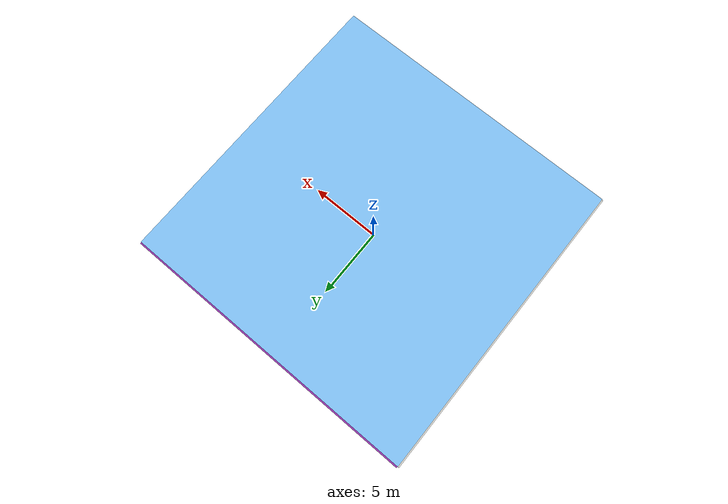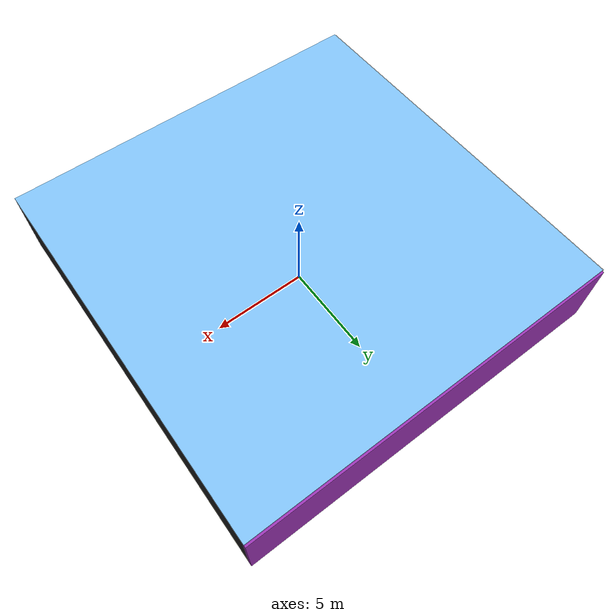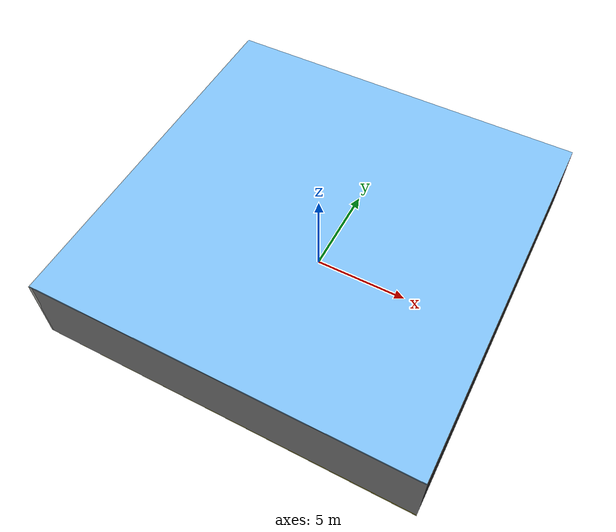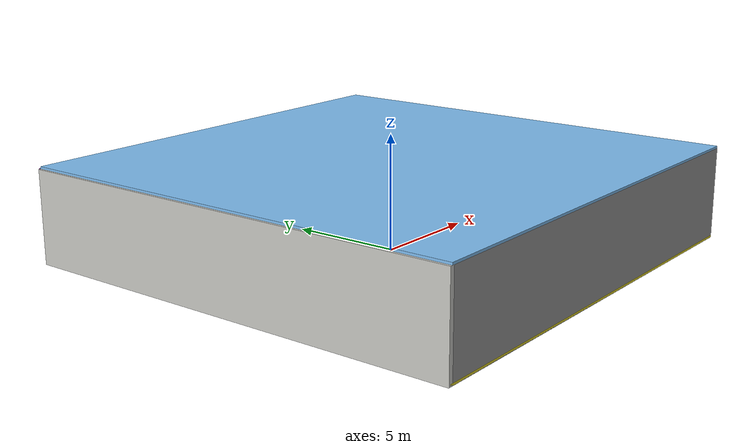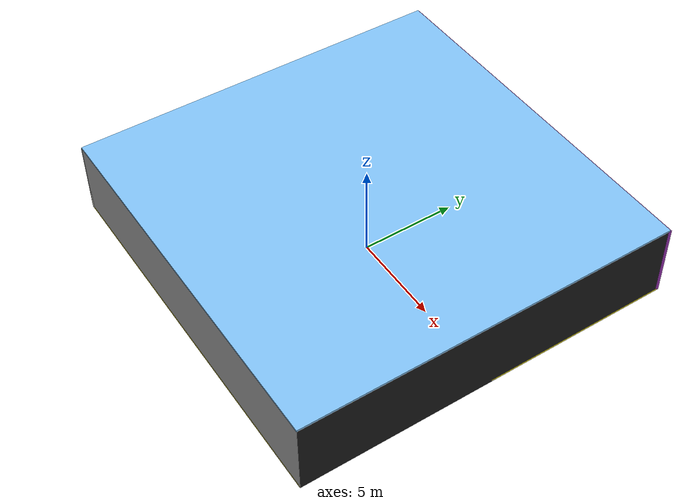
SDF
<sdf version="1.4">
 <world name="default">
  <physics type="ode">
   <max_step_size>0.001</max_step_size>
   <real_time_factor>1</real_time_factor>
   <real_time_update_rate>1000</real_time_update_rate>
   <gravity>0 0 -9.8</gravity>
  </physics>
  <scene><ambient>0.4 0.4 0.4 1</ambient><background>0.7 0.7 0.7 1</background><shadows>1</shadows></scene>
  <model name="Surrounding">
   <static>1</static>
   <link name="Ceiling">
    <collision name="Ceiling_Collision"><geometry><box><size>20 20 0.1</size></box></geometry></collision>
    <visual name="Ceiling_Visual">
     <geometry><box><size>20 20 0.1</size></box></geometry>
     <material>
      <script><uri>file://media/materials/scripts/gazebo.material</uri><name>Gazebo/SkyBlue</name></script>
     </material>
    </visual>
    <pose>0 0 4.05 0 0 0</pose>
   </link>
   <link name="Wall_South">
    <collision name="Wall_South_Collision">
     <geometry><box><size>20 0 4</size></box></geometry>
     <pose>0 0 2 0 -0 0</pose>
    </collision>
    <visual name="Wall_South_Visual">
     <pose>0 0 2 0 -0 0</pose>
     <geometry><box><size>20 0 4</size></box></geometry>
     <material>
      <script><uri>file://media/materials/scripts/gazebo.material</uri><name>Gazebo/GreyGradientSky</name></script>
     </material>
    </visual>
    <velocity_decay><linear>0</linear><angular>0</angular></velocity_decay>
    <pose>0 -10 0 0 -0 0</pose>
   </link>
   <link name="Wall_East">
    <collision name="Wall_21_Collision">
     <geometry><box><size>20 0 4</size></box></geometry>
     <pose>0 0 2 0 -0 0</pose>
    </collision>
    <visual name="Wall_21_Visual">
     <pose>0 0 2 0 -0 0</pose>
     <geometry><box><size>20 0 4</size></box></geometry>
     <material>
      <script><uri>file://media/materials/scripts/gazebo.material</uri><name>Gazebo/FlatBlack</name></script>
     </material>
    </visual>
    <velocity_decay><linear>0</linear><angular>0</angular></velocity_decay>
    <pose>10 0 0 0 -0 1.5708</pose>
   </link>
   <link name="Wall_North">
    <collision name="Wall_22_Collision">
     <geometry><box><size>20 0.2 4</size></box></geometry>
     <pose>0 0 2 0 -0 0</pose>
    </collision>
    <visual name="Wall_22_Visual">
     <pose>0 0 2 0 -0 0</pose>
     <geometry><box><size>20 0.2 4</size></box></geometry>
     <material>
      <script><uri>file://media/materials/scripts/gazebo.material</uri><name>Gazebo/Purple</name></script>
     </material>
    </visual>
    <velocity_decay><linear>0</linear><angular>0</angular></velocity_decay>
    <pose>0 10 0 0 -0 0</pose>
   </link>
   <link name="Wall_West">
    <collision name="Wall_23_Collision">
     <geometry><box><size>20 0.2 4</size></box></geometry>
     <pose>0 0 2 0 -0 0</pose>
    </collision>
    <visual name="Wall_23_Visual">
     <pose>0 0 2 0 -0 0</pose>
     <geometry><box><size>20 0.2 4</size></box></geometry>
     <material>
      <script><uri>file://media/materials/scripts/gazebo.material</uri><name>Gazebo/CeilingTiled</name></script>
     </material>
    </visual>
    <velocity_decay><linear>0</linear><angular>0</angular></velocity_decay>
    <pose>-10 0 0 0 0 -1.5708</pose>
   </link>
   <link name="Ground_link">
    <collision name="collision">
     <pose>0 0 .05 0 -0 0</pose>
     <geometry><box><size>20 20 0.1</size></box></geometry>
    </collision>
    <visual name="visual">
     <pose>0 0 .05 0 -0 0</pose>
     <geometry><box><size>20 20 0.1</size></box></geometry>
     <material>
      <script><uri>file://media/materials/scripts/gazebo.material</uri><name>Gazebo/Yellow</name></script>
     </material>
    </visual>
   </link>
   <static>1</static>
  </model>
  <spherical_coordinates>
   <surface_model>EARTH_WGS84</surface_model>
   <latitude_deg>0</latitude_deg>
   <longitude_deg>0</longitude_deg>
   <elevation>0</elevation>
   <heading_deg>0</heading_deg>
  </spherical_coordinates>
  <light name="lightball_0" type="diffuse">
   <diffuse>0.8 0.8 0.8 1</diffuse>
   <specular>0.2 0.2 0.2 1</specular>
   <attenuation>
    <range>100</range>
    <constant>0.7</constant>
    <linear>0.01</linear>
    <quadratic>0.001</quadratic>
   </attenuation>
   <direction>-0.5 0.1 -0.9</direction>
   <pose>2.08333592579 -8.33993969188 3.07736773441 0 0 0</pose>
  </light>
  <light name="lightball_1" type="diffuse">
   <diffuse>0.8 0.8 0.8 1</diffuse>
   <specular>0.2 0.2 0.2 1</specular>
   <attenuation>
    <range>100</range>
    <constant>0.7</constant>
    <linear>0.01</linear>
    <quadratic>0.001</quadratic>
   </attenuation>
   <direction>-0.5 0.1 -0.9</direction>
   <pose>-2.45424622305 7.70987411004 2.24824781214 0 0 0</pose>
  </light>
  <light name="lightball_2" type="diffuse">
   <diffuse>0.8 0.8 0.8 1</diffuse>
   <specular>0.2 0.2 0.2 1</specular>
   <attenuation>
    <range>100</range>
    <constant>0.7</constant>
    <linear>0.01</linear>
    <quadratic>0.001</quadratic>
   </attenuation>
   <direction>-0.5 0.1 -0.9</direction>
   <pose>9.97151118487 8.74313154931 3.36377018523 0 0 0</pose>
  </light>
  <light name="lightball_3" type="diffuse">
   <diffuse>0.8 0.8 0.8 1</diffuse>
   <specular>0.2 0.2 0.2 1</specular>
   <attenuation>
    <range>100</range>
    <constant>0.7</constant>
    <linear>0.01</linear>
    <quadratic>0.001</quadratic>
   </attenuation>
   <direction>-0.5 0.1 -0.9</direction>
   <pose>9.14845286361 -8.78703155832 3.77370992589 0 0 0</pose>
  </light>
  <light name="lightball_4" type="diffuse">
   <diffuse>0.8 0.8 0.8 1</diffuse>
   <specular>0.2 0.2 0.2 1</specular>
   <attenuation>
    <range>100</range>
    <constant>0.7</constant>
    <linear>0.01</linear>
    <quadratic>0.001</quadratic>
   </attenuation>
   <direction>-0.5 0.1 -0.9</direction>
   <pose>7.00997676924 9.20246112106 0.706478151204 0 0 0</pose>
  </light>
  <light name="lightball_5" type="diffuse">
   <diffuse>0.8 0.8 0.8 1</diffuse>
   <specular>0.2 0.2 0.2 1</specular>
   <attenuation>
    <range>100</range>
    <constant>0.7</constant>
    <linear>0.01</linear>
    <quadratic>0.001</quadratic>
   </attenuation>
   <direction>-0.5 0.1 -0.9</direction>
   <pose>5.24279874529 2.43963523181 3.61194315695 0 0 0</pose>
  </light>
  <light name="lightball_6" type="diffuse">
   <diffuse>0.8 0.8 0.8 1</diffuse>
   <specular>0.2 0.2 0.2 1</specular>
   <attenuation>
    <range>100</range>
    <constant>0.7</constant>
    <linear>0.01</linear>
    <quadratic>0.001</quadratic>
   </attenuation>
   <direction>-0.5 0.1 -0.9</direction>
   <pose>5.09420474981 4.31357085689 1.33442632959 0 0 0</pose>
  </light>
  <light name="lightball_7" type="diffuse">
   <diffuse>0.8 0.8 0.8 1</diffuse>
   <specular>0.2 0.2 0.2 1</specular>
   <attenuation>
    <range>100</range>
    <constant>0.7</constant>
    <linear>0.01</linear>
    <quadratic>0.001</quadratic>
   </attenuation>
   <direction>-0.5 0.1 -0.9</direction>
   <pose>7.17823657918 -3.39206821583 1.03912473701 0 0 0</pose>
  </light>
  <include><uri>model://cabinet</uri><pose>-7.99114896288 2.23217287539 0 0 0 2.22596665381</pose></include>
  <include><uri>model://cabinet</uri><pose>-8.14247618275 7.72316463579 0 0 0 1.25172471453</pose></include>
  <include><uri>model://table</uri><pose>-2.43566506068 -3.87984141499 0 0 0 2.23461557483</pose></include>
  <include><uri>model://cabinet</uri><pose>0.430567702255 8.0641641358 0 0 0 0.44554441463</pose></include>
  <include>
   <uri>model://robocup_3Dsim_goal</uri>
   <pose>4.89969141042 8.66482905675 0 0 0 2.81843900227</pose>
  </include>
 </world>
</sdf>

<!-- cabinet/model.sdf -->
<sdf version="1.5">
  <model name="cabinet">
    <static>true</static>
    <link name="cabinet_bottom_plate">
      <inertial>
        <pose>0 0 -1 0 0 0</pose>
        <inertia>
          <ixx>2.050000</ixx>
          <ixy>0</ixy>
          <ixz>0</ixz>
          <iyy>2.050000</iyy>
          <iyz>0</iyz>
          <izz>2.050000</izz>
        </inertia>
        <mass>25.000000</mass>
      </inertial>
      <collision name="cabinet_bottom_plate_geom">
        <pose>0 0 0.010000 0 0 0</pose>
        <geometry>
          <box>
            <size>0.450000 0.450000 0.020000</size>
          </box>
        </geometry>
      </collision>
      <visual name="cabinet_bottom_plate_geom_visual">
        <pose>0 0 0.010000 0 0 0</pose>
        <geometry>
          <box>
            <size>0.450000 0.450000 0.020000</size>
          </box>
        </geometry>
        <material>
          <script>
            <uri>model://media/materials/scripts/gazebo.material</uri>
            <name>Gazebo/Wood</name>
          </script>
        </material>
      </visual>
      <collision name="cabinet_bottom_plate_geom_cabinet_back_plate">
        <pose>0.235000 0 0.510000 0 0 0</pose>
        <geometry>
          <box>
            <size>0.020000 0.450000 1.020000</size>
          </box>
        </geometry>
      </collision>
      <visual name="cabinet_bottom_plate_geom_cabinet_back_plate_visual">
        <pose>0.235000 0 0.510000 0 0 0</pose>
        <geometry>
          <box>
            <size>0.020000 0.450000 1.020000</size>
          </box>
        </geometry>
        <material>
          <script>
            <uri>model://media/materials/scripts/gazebo.material</uri>
            <name>Gazebo/Wood</name>
          </script>
        </material>
      </visual>
      <collision name="cabinet_bottom_plate_geom_cabinet_left_plate">
        <pose>0 0.235000 0.510000 0 0 0</pose>
        <geometry>
          <box>
            <size>0.450000 0.020000 1.020000</size>
          </box>
        </geometry>
      </collision>
      <visual name="cabinet_bottom_plate_geom_cabinet_left_plate_visual">
        <pose>0 0.235000 0.510000 0 0 0</pose>
        <geometry>
          <box>
            <size>0.450000 0.020000 1.020000</size>
          </box>
        </geometry>
        <material>
          <script>
            <uri>model://media/materials/scripts/gazebo.material</uri>
            <name>Gazebo/Wood</name>
          </script>
        </material>
      </visual>
      <collision name="cabinet_bottom_plate_geom_cabinet_middle_plate">
        <pose>0 0 0.510000 0 0 0</pose>
        <geometry>
          <box>
            <size>0.450000 0.450000 0.020000</size>
          </box>
        </geometry>
      </collision>
      <visual name="cabinet_bottom_plate_geom_cabinet_middle_plate_visual">
        <pose>0 0 0.510000 0 0 0</pose>
        <geometry>
          <box>
            <size>0.450000 0.450000 0.020000</size>
          </box>
        </geometry>
        <material>
          <script>
            <uri>model://media/materials/scripts/gazebo.material</uri>
            <name>Gazebo/Wood</name>
          </script>
        </material>
      </visual>
      <collision name="cabinet_bottom_plate_geom_cabinet_right_plate">
        <pose>0 -0.235000 0.510000 0 0 0</pose>
        <geometry>
          <box>
            <size>0.450000 0.020000 1.020000</size>
          </box>
        </geometry>
      </collision>
      <visual name="cabinet_bottom_plate_geom_cabinet_right_plate_visual">
        <pose>0 -0.235000 0.510000 0 0 0</pose>
        <geometry>
          <box>
            <size>0.450000 0.020000 1.020000</size>
          </box>
        </geometry>
        <material>
          <script>
            <uri>model://media/materials/scripts/gazebo.material</uri>
            <name>Gazebo/Wood</name>
          </script>
        </material>
      </visual>
      <collision name="cabinet_bottom_plate_geom_cabinet_top_plate">
        <pose>0 0 1.010000 0 0 0</pose>
        <geometry>
          <box>
            <size>0.450000 0.450000 0.020000</size>
          </box>
        </geometry>
      </collision>
      <visual name="cabinet_bottom_plate_geom_cabinet_top_plate_visual">
        <pose>0 0 1.010000 0 0 0</pose>
        <geometry>
          <box>
            <size>0.450000 0.450000 0.020000</size>
          </box>
        </geometry>
        <material>
          <script>
            <uri>model://media/materials/scripts/gazebo.material</uri>
            <name>Gazebo/Wood</name>
          </script>
        </material>
      </visual>
    </link>
  </model>
</sdf>

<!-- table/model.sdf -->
<sdf version="1.5">
  <model name="table">
    <static>true</static>
    <link name="link">
      <collision name="surface">
        <pose>0 0 1.0 0 0 0</pose>
        <geometry>
          <box>
            <size>1.5 0.8 0.03</size>
          </box>
        </geometry>
        <surface>
          <friction>
            <ode>
              <mu>0.6</mu>
              <mu2>0.6</mu2>
            </ode>
          </friction>
        </surface>
      </collision>
      <visual name="visual1">
        <pose>0 0 1.0 0 0 0</pose>
        <geometry>
          <box>
            <size>1.5 0.8 0.03</size>
          </box>
        </geometry>
        <material>
          <script>
            <uri>model://media/materials/scripts/gazebo.material</uri>
            <name>Gazebo/Wood</name>
          </script>
        </material>
      </visual>
      <collision name="front_left_leg">
        <pose>0.68 0.38 0.5 0 0 0</pose>
        <geometry>
          <cylinder>
            <radius>0.02</radius>
            <length>1.0</length>
          </cylinder>
        </geometry>
      </collision>
      <visual name="front_left_leg">
        <pose>0.68 0.38 0.5 0 0 0</pose>
        <geometry>
          <cylinder>
            <radius>0.02</radius>
            <length>1.0</length>
          </cylinder>
        </geometry>
        <material>
          <script>
            <uri>model://media/materials/scripts/gazebo.material</uri>
            <name>Gazebo/Grey</name>
          </script>
        </material>
      </visual>
      <collision name="front_right_leg">
        <pose>0.68 -0.38 0.5 0 0 0</pose>
        <geometry>
          <cylinder>
            <radius>0.02</radius>
            <length>1.0</length>
          </cylinder>
        </geometry>
      </collision>
      <visual name="front_right_leg">
        <pose>0.68 -0.38 0.5 0 0 0</pose>
        <geometry>
          <cylinder>
            <radius>0.02</radius>
            <length>1.0</length>
          </cylinder>
        </geometry>
        <material>
          <script>
            <uri>model://media/materials/scripts/gazebo.material</uri>
            <name>Gazebo/Grey</name>
          </script>
        </material>
      </visual>
      <collision name="back_right_leg">
        <pose>-0.68 -0.38 0.5 0 0 0</pose>
        <geometry>
          <cylinder>
            <radius>0.02</radius>
            <length>1.0</length>
          </cylinder>
        </geometry>
      </collision>
      <visual name="back_right_leg">
        <pose>-0.68 -0.38 0.5 0 0 0</pose>
        <geometry>
          <cylinder>
            <radius>0.02</radius>
            <length>1.0</length>
          </cylinder>
        </geometry>
        <material>
          <script>
            <uri>model://media/materials/scripts/gazebo.material</uri>
            <name>Gazebo/Grey</name>
          </script>
        </material>
      </visual>
      <collision name="back_left_leg">
        <pose>-0.68 0.38 0.5 0 0 0</pose>
        <geometry>
          <cylinder>
            <radius>0.02</radius>
            <length>1.0</length>
          </cylinder>
        </geometry>
      </collision>
      <visual name="back_left_leg">
        <pose>-0.68 0.38 0.5 0 0 0</pose>
        <geometry>
          <cylinder>
            <radius>0.02</radius>
            <length>1.0</length>
          </cylinder>
        </geometry>
        <material>
          <script>
            <uri>model://media/materials/scripts/gazebo.material</uri>
            <name>Gazebo/Grey</name>
          </script>
        </material>
      </visual>
    </link>
  </model>
</sdf>

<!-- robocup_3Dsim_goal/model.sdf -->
<sdf version="1.5">
  <model name="robocup_3d_goal">
    <static>true</static>
    <link name="left_post">
      <pose>0 1.05 0.45 0 0 0</pose>
      <collision name="collision">
        <geometry>
          <cylinder>
            <radius>0.05</radius>
            <length>0.9</length>
          </cylinder>
        </geometry>
      </collision>
      <visual name="visual">
        <geometry>
          <cylinder>
            <radius>0.05</radius>
            <length>0.9</length>
          </cylinder>
        </geometry>
        <material>
          <script>
            <uri>file://media/materials/scripts/gazebo.material</uri>
            <name>Gazebo/ZincYellow</name>
          </script>
        </material>
      </visual>
    </link>
    <link name="left_support_horiz_lower">
      <pose>0.30 1.05 0.01 0 0 0</pose>
      <collision name="collision">
        <geometry>
          <box>
            <size>0.50 0.02 0.02</size>
          </box>
        </geometry>
      </collision>
      <visual name="visual">
        <geometry>
          <box>
            <size>0.50 0.02 0.02</size>
          </box>
        </geometry>
        <material>
          <script>
            <uri>file://media/materials/scripts/gazebo.material</uri>
            <name>Gazebo/White</name>
          </script>
        </material>
      </visual>
    </link>
    <link name="left_support_horiz_upper">
      <pose>0.30 1.05 0.79 0 0 0</pose>
      <collision name="collision">
        <geometry>
          <box>
            <size>0.50 0.02 0.02</size>
          </box>
        </geometry>
      </collision>
      <visual name="visual">
        <geometry>
          <box>
            <size>0.50 0.02 0.02</size>
          </box>
        </geometry>
        <material>
          <script>
            <uri>file://media/materials/scripts/gazebo.material</uri>
            <name>Gazebo/White</name>
          </script>
        </material>
      </visual>
    </link>
    <link name="left_support_vertical">
      <pose>0.56 1.05 0.4 0 1.5708 0</pose>
      <collision name="collision">
        <geometry>
          <box>
            <size>0.80 0.02 0.02</size>
          </box>
        </geometry>
      </collision>
      <visual name="visual">
        <geometry>
          <box>
            <size>0.80 0.02 0.02</size>
          </box>
        </geometry>
        <material>
          <script>
            <uri>file://media/materials/scripts/gazebo.material</uri>
            <name>Gazebo/White</name>
          </script>
        </material>
      </visual>
    </link>
    <link name="right_support_horiz_lower">
      <pose>0.30 -1.05 0.01 0 0 0</pose>
      <collision name="collision">
        <geometry>
          <box>
            <size>0.50 0.02 0.02</size>
          </box>
        </geometry>
      </collision>
      <visual name="visual">
        <geometry>
          <box>
            <size>0.50 0.02 0.02</size>
          </box>
        </geometry>
        <material>
          <script>
            <uri>file://media/materials/scripts/gazebo.material</uri>
            <name>Gazebo/White</name>
          </script>
        </material>
      </visual>
    </link>
    <link name="right_support_horiz_upper">
      <pose>0.30 -1.05 0.79 0 0 0</pose>
      <collision name="collision">
        <geometry>
          <box>
            <size>0.50 0.02 0.02</size>
          </box>
        </geometry>
      </collision>
      <visual name="visual">
        <geometry>
          <box>
            <size>0.50 0.02 0.02</size>
          </box>
        </geometry>
        <material>
          <script>
            <uri>file://media/materials/scripts/gazebo.material</uri>
            <name>Gazebo/White</name>
          </script>
        </material>
      </visual>
    </link>
    <link name="right_support_vertical">
      <pose>0.56 -1.05 0.4 0 1.5708 0</pose>
      <collision name="collision">
        <geometry>
          <box>
            <size>0.80 0.02 0.02</size>
          </box>
        </geometry>
      </collision>
      <visual name="visual">
        <geometry>
          <box>
            <size>0.80 0.02 0.02</size>
          </box>
        </geometry>
        <material>
          <script>
            <uri>file://media/materials/scripts/gazebo.material</uri>
            <name>Gazebo/White</name>
          </script>
        </material>
      </visual>
    </link>
    <link name="center_support_horiz_lower">
      <pose>0.56 0 0.01 0 1.5708 0</pose>
      <collision name="collision">
        <geometry>
          <box>
            <size>0.02 2.08 0.02</size>
          </box>
        </geometry>
      </collision>
      <visual name="visual">
        <geometry>
          <box>
            <size>0.02 2.08 0.02</size>
          </box>
        </geometry>
        <material>
          <script>
            <uri>file://media/materials/scripts/gazebo.material</uri>
            <name>Gazebo/White</name>
          </script>
        </material>
      </visual>
    </link>
    <link name="center_support_horiz_upper">
      <pose>0.56 0 0.79 0 1.5708 0</pose>
      <collision name="collision">
        <geometry>
          <box>
            <size>0.02 2.08 0.02</size>
          </box>
        </geometry>
      </collision>
      <visual name="visual">
        <geometry>
          <box>
            <size>0.02 2.08 0.02</size>
          </box>
        </geometry>
        <material>
          <script>
            <uri>file://media/materials/scripts/gazebo.material</uri>
            <name>Gazebo/White</name>
          </script>
        </material>
      </visual>
    </link>
    <link name="right_post">
      <pose>0 -1.05 0.45 0 0 0</pose>
      <collision name="collision">
        <geometry>
          <cylinder>
            <radius>0.05</radius>
            <length>0.9</length>
          </cylinder>
        </geometry>
      </collision>
      <visual name="visual">
        <geometry>
          <cylinder>
            <radius>0.05</radius>
            <length>0.9</length>
          </cylinder>
        </geometry>
        <material>
          <script>
            <uri>file://media/materials/scripts/gazebo.material</uri>
            <name>Gazebo/ZincYellow</name>
          </script>
        </material>
      </visual>
    </link>
    <link name="crossbar">
      <pose>0 0 0.85 1.57 1.57 0</pose>
      <collision name="collision">
        <geometry>
          <cylinder>
            <radius>0.05</radius>
            <length>2.0</length>
          </cylinder>
        </geometry>
      </collision>
      <visual name="visual">
        <geometry>
          <cylinder>
            <radius>0.05</radius>
            <length>2.0</length>
          </cylinder>
        </geometry>
        <material>
          <script>
            <uri>file://media/materials/scripts/gazebo.material</uri>
            <name>Gazebo/ZincYellow</name>
          </script>
        </material>
      </visual>
    </link>
    <link name="center_net">
      <pose>0.56 0 0.40 0 0 0</pose>
      <collision name="collision">
        <geometry>
          <box>
            <size>0.01 2.1 0.80</size>
          </box>
        </geometry>
      </collision>
      <visual name="visual">
        <geometry>
          <box>
            <size>0.01 2.1 0.80</size>
          </box>
        </geometry>
        <material>
          <script>
            <uri>model://../model_source/models/robocup09_spl_field/materials/scripts/</uri>
            <uri>model://../model_source/models/robocup09_spl_field/materials/textures/</uri>
            <name>RoboCup/Net</name>
          </script>
        </material>
      </visual>
    </link>
    <link name="left_net">
      <pose>0.30 1.05 0.40 0 0 0</pose>
      <collision name="collision">
        <geometry>
          <box>
            <size>0.50 0.01 0.76</size>
          </box>
        </geometry>
      </collision>
      <visual name="visual">
        <geometry>
          <box>
            <size>0.50 0.01 0.76</size>
          </box>
        </geometry>
        <material>
          <script>
            <uri>model://../model_source/models/robocup09_spl_field/materials/scripts/</uri>
            <uri>model://../model_source/models/robocup09_spl_field/materials/textures/</uri>
            <name>RoboCup/Net</name>
          </script>
        </material>
      </visual>
    </link>
    <link name="right_net">
      <pose>0.30 -1.05 0.40 0 0 0</pose>
      <collision name="collision">
        <geometry>
          <box>
            <size>0.50 0.01 0.76</size>
          </box>
        </geometry>
      </collision>
      <visual name="visual">
        <geometry>
          <box>
            <size>0.50 0.01 0.76</size>
          </box>
        </geometry>
        <material>
          <script>
            <uri>model://../model_source/models/robocup09_spl_field/materials/scripts/</uri>
            <uri>model://../model_source/models/robocup09_spl_field/materials/textures/</uri>
            <name>RoboCup/Net</name>
          </script>
        </material>
      </visual>
    </link>
  </model>
</sdf>
